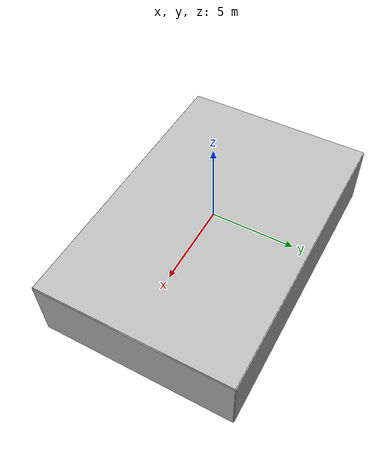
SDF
<?xml version="1.0" ?>
<sdf version="1.5">
  <world name="empty_underwater">
    <physics name="default_physics" default="true" type="ode">
      <max_step_size>0.002</max_step_size>
      <real_time_factor>1</real_time_factor>
      <real_time_update_rate>500</real_time_update_rate>
      <ode>
        <solver>
          <type>quick</type>
          <iters>50</iters>
          <sor>0.5</sor>
        </solver>
      </ode>
    </physics>
    <scene>
      <ambient>0.0.5 0.1 0.3 1.0</ambient>
      <sky>
        <clouds>
          <speed>12</speed>
        </clouds>
      </sky>
      <shadows>1</shadows>
      <fog>
        <color>0.1 0.2 0.3 1.0</color>
        <type>linear</type>
        <density>1.0</density>
        <start>0.1</start>
        <end>20</end>
      </fog>
    </scene>

    <!-- Origin placed somewhere in the middle of the North Sea  -->
    <spherical_coordinates>
      <latitude_deg>56.71897669633431</latitude_deg>
      <longitude_deg>3.515625</longitude_deg>
    </spherical_coordinates>

    <!-- Global light source -->
    <include>
      <uri>model://sun</uri>
    </include>

    <!-- Bounding box with sea surface -->
    <include>
      <uri>model://divewell_startgate</uri>
      <pose>0 0 0 0 0 0</pose>
    </include>

    <plugin name="underwater_current_plugin" filename="libuuv_underwater_current_ros_plugin.so">
      <namespace>hydrodynamics</namespace>
      <constant_current>
        <topic>current_velocity</topic>
        <velocity>
          <mean>0</mean>
          <min>0</min>
          <max>5</max>
          <mu>0.0</mu>
          <noiseAmp>0.0</noiseAmp>
        </velocity>

        <horizontal_angle>
          <mean>0</mean>
          <min>-3.141592653589793238</min>
          <max>3.141592653589793238</max>
          <mu>0.0</mu>
          <noiseAmp>0.0</noiseAmp>
        </horizontal_angle>

        <vertical_angle>
          <mean>0</mean>
          <min>-3.141592653589793238</min>
          <max>3.141592653589793238</max>
          <mu>0.0</mu>
          <noiseAmp>0.0</noiseAmp>
        </vertical_angle>
      </constant_current>
    </plugin>

    <plugin name="sc_interface" filename="libuuv_sc_ros_interface_plugin.so"/>

  </world>
</sdf>

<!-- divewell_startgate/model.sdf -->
<sdf version="1.5">
  <model name="divewell">
    <static>true</static>
    <link name="link">

      <visual name="gate_top_left">
        <cast_shadows>true</cast_shadows>
        <pose>4.5 -0.762 -1 1.57 0 0</pose>
        <geometry>
          <cylinder>
            <radius>0.0381</radius>
            <length>1.524</length>
          </cylinder>
        </geometry>
        <material>
          <script>
            <uri>file://Media/materials/scripts/pool.material</uri>
            <name>Robosub/black</name>
          </script>
        </material>
      </visual>

      <visual name="gate_flag_left">
        <cast_shadows>false</cast_shadows>
        <pose>4.5 -0.1016 -1.1905 0 0 0</pose>
        <geometry>
          <box>
            <size>.001 0.2032 0.3048</size>
          </box>
        </geometry>
        <material>
          <script>
            <uri>file://Media/materials/scripts/pool.material</uri>
            <name>Robosub/black</name>
          </script>
        </material>
      </visual>

      <visual name="gate_flag_right">
        <cast_shadows>false</cast_shadows>
        <pose>4.5 0.1016 -1.1905 0 0 0</pose>
        <geometry>
          <box>
            <size>.001 0.2032 0.3048</size>
          </box>
        </geometry>
        <material>
          <script>
            <uri>file://Media/materials/scripts/pool.material</uri>
            <name>Robosub/red</name>
          </script>
        </material>
      </visual>

      <visual name="gate_top_right">
        <cast_shadows>true</cast_shadows>
        <pose>4.5 0.762 -1 1.57 0 0</pose>
        <geometry>
          <cylinder>
            <radius>0.0381</radius>
            <length>1.524</length>
          </cylinder>
        </geometry>
        <material>
          <script>
            <uri>file://Media/materials/scripts/pool.material</uri>
            <name>Robosub/red</name>
          </script>
        </material>
      </visual>

      <visual name="gate_left_orange">
        <cast_shadows>true</cast_shadows>
        <pose>4.5 -1.5621 -1.7615 0 0 0</pose>
        <geometry>
          <cylinder>
            <radius>0.0381</radius>
            <length>1.219</length>
          </cylinder>
        </geometry>
        <material>
          <script>
            <uri>file://Media/materials/scripts/pool.material</uri>
            <name>Robosub/orange</name>
          </script>
        </material>
      </visual>

      <visual name="gate_left_black">
        <cast_shadows>true</cast_shadows>
        <pose>4.5 -1.5621 -1.7615 0 0 0</pose>
        <geometry>
          <cylinder>
            <radius>0.0361</radius>
            <length>1.524</length>
          </cylinder>
        </geometry>
        <material>
          <script>
            <uri>file://Media/materials/scripts/pool.material</uri>
            <name>Robosub/black</name>
          </script>
        </material>
      </visual>

      <visual name="gate_right_orange">
        <cast_shadows>true</cast_shadows>
        <pose>4.5 1.5621 -1.7615 0 0 0</pose>
        <geometry>
          <cylinder>
            <radius>0.0381</radius>
            <length>1.219</length>
          </cylinder>
        </geometry>
        <material>
          <script>
            <uri>file://Media/materials/scripts/pool.material</uri>
            <name>Robosub/orange</name>
          </script>
        </material>
      </visual>

      <visual name="gate_right_black">
        <cast_shadows>true</cast_shadows>
        <pose>4.5 1.5621 -1.7615 0 0 0</pose>
        <geometry>
          <cylinder>
            <radius>0.0361</radius>
            <length>1.524</length>
          </cylinder>
        </geometry>
        <material>
          <script>
            <uri>file://Media/materials/scripts/pool.material</uri>
            <name>Robosub/black</name>
          </script>
        </material>
      </visual>

      <visual name="ground">
        <cast_shadows>false</cast_shadows>
        <pose>0 0 -4 0 0 0</pose>
        <geometry>
          <box>
            <size>18 12 .1</size>
          </box>
        </geometry>
        <material>
          <script>
            <uri>file://Media/materials/scripts/pool.material</uri>
            <name>Robosub/PoolWall</name>
          </script>
        </material>
      </visual>

      <collision name="ground">
        <pose>0 0 -4 0 0 0</pose>
        <geometry>
          <box>
            <size>18 12 .1</size>
          </box>
        </geometry>
      </collision>

      <visual name="surface">
        <cast_shadows>false</cast_shadows>
        <pose>0 0 0 0 0 0</pose>
        <geometry>
          <box>
            <size>18 12 .1</size>
          </box>
        </geometry>
        <material>
          <script>
            <uri>file://Media/materials/scripts/water.material</uri>
            <name>UUVSimulator/StaticDeepWater</name>
          </script>
        </material>
      </visual>

      <visual name="north">
        <cast_shadows>false</cast_shadows>
        <pose>9 0 -2 0 0 0</pose>
        <geometry>
          <box>
            <size>.1 12 4</size>
          </box>
        </geometry>
        <material>
          <script>
            <uri>file://Media/materials/scripts/pool.material</uri>
            <name>Robosub/PoolWall</name>
          </script>
        </material>
      </visual>

      <visual name="south">
        <cast_shadows>false</cast_shadows>
        <pose>-9 0 -2 0 0 0</pose>
        <geometry>
          <box>
            <size>.1 12 4</size>
          </box>
        </geometry>
        <material>
          <script>
            <uri>file://Media/materials/scripts/pool.material</uri>
            <name>Robosub/PoolWall</name>
          </script>
        </material>
      </visual>

      <visual name="east">
        <cast_shadows>false</cast_shadows>
        <pose>0 -6 -2 0 0 0</pose>
        <geometry>
          <box>
            <size>18 .1 4</size>
          </box>
        </geometry>
        <material>
          <script>
            <uri>file://Media/materials/scripts/pool.material</uri>
            <name>Robosub/PoolWall</name>
          </script>
        </material>
      </visual>

      <visual name="west">
        <cast_shadows>false</cast_shadows>
        <pose>0 6 -2 0 0 0</pose>
        <geometry>
          <box>
            <size>18 .1 4</size>
          </box>
        </geometry>
        <material>
          <script>
            <uri>file://Media/materials/scripts/pool.material</uri>
            <name>Robosub/PoolWall</name>
          </script>
        </material>
      </visual>
    </link>
  </model>
</sdf>
